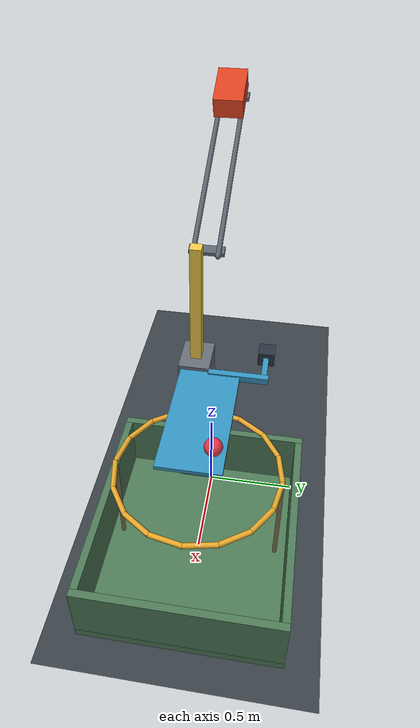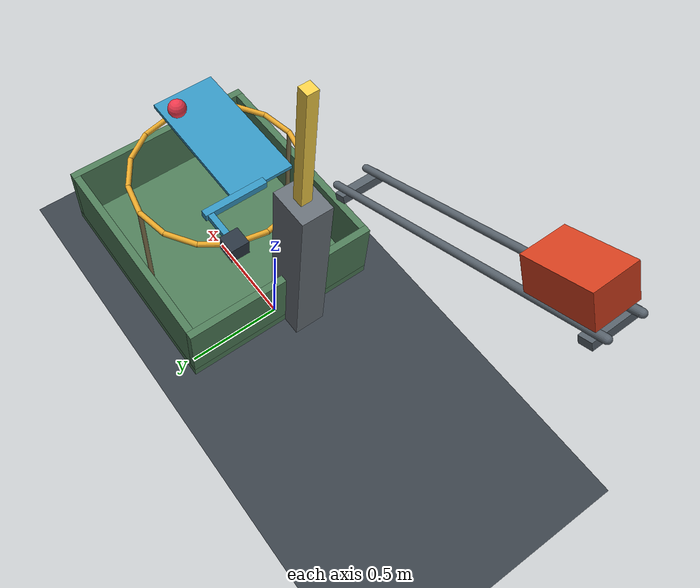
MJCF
<mujoco model="cart_domino_flap_ball">
  <compiler angle="radian"/>
  <option timestep="0.002" gravity="0 0 -9.81" integrator="implicitfast" cone="elliptic" iterations="100"/>

  <visual>
    <headlight ambient="0.4 0.4 0.4" diffuse="0.7 0.7 0.7" specular="0.2 0.2 0.2"/>
    <map znear="0.01"/>
  </visual>

  <worldbody>
    <light name="overhead" pos="-0.3 -1.5 4" dir="0.1 0.3 -1"/>
    <camera name="overview" pos="2.6 -4.2 2.8" xyaxes="0.85 0.53 0 -0.24 0.39 0.89"/>

    <geom name="floor" type="plane" size="5 5 0.1" rgba="0.22 0.25 0.28 1" friction="0.8 0.005 0.004" condim="6"/>

    <!-- The slide has a 1.2 m stroke. Contact occurs just before its end stop. -->
    <body name="rail" pos="-1.307 -0.10 1.989" quat="0.9762960071 0 0.2164396139 0">
      <geom name="rail_left" type="capsule" fromto="-0.15 -0.07 -0.095 1.10 -0.07 -0.095" size="0.015" friction="0.03 0.002 0.0001" rgba="0.35 0.39 0.43 1"/>
      <geom name="rail_right" type="capsule" fromto="-0.15 0.07 -0.095 1.10 0.07 -0.095" size="0.015" friction="0.03 0.002 0.0001" rgba="0.35 0.39 0.43 1"/>
      <geom name="rail_crosspiece_upper" type="box" pos="-0.10 0 -0.12" size="0.025 0.10 0.015" rgba="0.35 0.39 0.43 1"/>
      <geom name="rail_crosspiece_lower" type="box" pos="1.05 0 -0.12" size="0.025 0.10 0.015" rgba="0.35 0.39 0.43 1"/>
    </body>

    <body name="cart" pos="-1.307 -0.10 1.989" quat="0.9762960071 0 0.2164396139 0">
      <joint name="cart_slide" type="slide" axis="1 0 0" limited="true" range="0 1.2" damping="5" frictionloss="0.02" solreflimit="0.005 1"/>
      <geom name="cart_chassis" type="box" size="0.13 0.09 0.07" mass="1" friction="0.03 0.002 0.0001" solref="0.01 1" rgba="0.85 0.25 0.12 1"/>
    </body>

    <body name="domino_support" pos="-0.065 -0.10 0.485">
      <geom name="domino_support_column" type="box" size="0.11 0.085 0.485" friction="4 0.005 0.001" rgba="0.40 0.43 0.46 1"/>
    </body>

    <body name="domino" pos="-0.06 -0.10 1.32">
      <freejoint name="domino_free"/>
      <geom name="domino_block" type="box" size="0.03 0.03 0.35" mass="0.32" friction="4 0.005 0.001" solref="0.01 1" rgba="0.95 0.80 0.28 1"/>
    </body>

    <!-- The counterweight holds the flap at its upper stop until the domino lands. -->
    <body name="flap" pos="0.10 0 0.99">
      <joint name="flap_hinge" type="hinge" axis="0 1 0" limited="true" range="0 1.2217304764" damping="0.015" frictionloss="0.005" solreflimit="0.005 1"/>
      <geom name="flap_plate" type="box" pos="0.335 0 0" size="0.335 0.16 0.01" mass="0.06" friction="4 0.005 0.001" solref="0.008 1" rgba="0.20 0.58 0.75 1"/>
      <geom name="flap_crossbar" type="box" pos="0 0.15 0" size="0.018 0.16 0.018" mass="0.014" friction="4 0.005 0.001" rgba="0.20 0.58 0.75 1"/>
      <geom name="flap_counterweight_arm" type="box" pos="-0.10 0.285 0" size="0.10 0.015 0.015" mass="0.008" friction="4 0.005 0.001" rgba="0.20 0.58 0.75 1"/>
      <geom name="flap_counterweight" type="box" pos="-0.20 0.285 0" size="0.045 0.045 0.04" mass="0.25" friction="4 0.005 0.001" rgba="0.16 0.20 0.25 1"/>
    </body>

    <body name="ball" pos="0.65 0.10 1.045">
      <freejoint name="ball_free"/>
      <geom name="ball_sphere" type="sphere" size="0.045" mass="0.045" condim="6" friction="0.7 0.005 0.004" solref="0.01 1" rgba="0.92 0.22 0.30 1"/>
    </body>

    <!-- A capsule-built ring leaves clearance for the flap's downward sweep. -->
    <body name="ring" pos="0.50 0 0.66">
      <geom name="ring_segment_00" type="capsule" fromto="0.44 0 0 0.406507 0.168381 0" size="0.014" rgba="0.90 0.65 0.16 1"/>
      <geom name="ring_segment_01" type="capsule" fromto="0.406507 0.168381 0 0.311127 0.311127 0" size="0.014" rgba="0.90 0.65 0.16 1"/>
      <geom name="ring_segment_02" type="capsule" fromto="0.311127 0.311127 0 0.168381 0.406507 0" size="0.014" rgba="0.90 0.65 0.16 1"/>
      <geom name="ring_segment_03" type="capsule" fromto="0.168381 0.406507 0 0 0.44 0" size="0.014" rgba="0.90 0.65 0.16 1"/>
      <geom name="ring_segment_04" type="capsule" fromto="0 0.44 0 -0.168381 0.406507 0" size="0.014" rgba="0.90 0.65 0.16 1"/>
      <geom name="ring_segment_05" type="capsule" fromto="-0.168381 0.406507 0 -0.311127 0.311127 0" size="0.014" rgba="0.90 0.65 0.16 1"/>
      <geom name="ring_segment_06" type="capsule" fromto="-0.311127 0.311127 0 -0.406507 0.168381 0" size="0.014" rgba="0.90 0.65 0.16 1"/>
      <geom name="ring_segment_07" type="capsule" fromto="-0.406507 0.168381 0 -0.44 0 0" size="0.014" rgba="0.90 0.65 0.16 1"/>
      <geom name="ring_segment_08" type="capsule" fromto="-0.44 0 0 -0.406507 -0.168381 0" size="0.014" rgba="0.90 0.65 0.16 1"/>
      <geom name="ring_segment_09" type="capsule" fromto="-0.406507 -0.168381 0 -0.311127 -0.311127 0" size="0.014" rgba="0.90 0.65 0.16 1"/>
      <geom name="ring_segment_10" type="capsule" fromto="-0.311127 -0.311127 0 -0.168381 -0.406507 0" size="0.014" rgba="0.90 0.65 0.16 1"/>
      <geom name="ring_segment_11" type="capsule" fromto="-0.168381 -0.406507 0 0 -0.44 0" size="0.014" rgba="0.90 0.65 0.16 1"/>
      <geom name="ring_segment_12" type="capsule" fromto="0 -0.44 0 0.168381 -0.406507 0" size="0.014" rgba="0.90 0.65 0.16 1"/>
      <geom name="ring_segment_13" type="capsule" fromto="0.168381 -0.406507 0 0.311127 -0.311127 0" size="0.014" rgba="0.90 0.65 0.16 1"/>
      <geom name="ring_segment_14" type="capsule" fromto="0.311127 -0.311127 0 0.406507 -0.168381 0" size="0.014" rgba="0.90 0.65 0.16 1"/>
      <geom name="ring_segment_15" type="capsule" fromto="0.406507 -0.168381 0 0.44 0 0" size="0.014" rgba="0.90 0.65 0.16 1"/>
      <geom name="ring_support_left" type="capsule" fromto="0 -0.44 -0.61 0 -0.44 0" size="0.012" rgba="0.50 0.45 0.30 1"/>
      <geom name="ring_support_right" type="capsule" fromto="0 0.44 -0.61 0 0.44 0" size="0.012" rgba="0.50 0.45 0.30 1"/>
    </body>

    <body name="box" pos="0.525 0 0">
      <geom name="box_bottom" type="box" pos="0 0 0.025" size="0.60 0.54 0.025" condim="6" friction="0.8 0.005 0.004" solref="0.01 1" rgba="0.30 0.48 0.34 1"/>
      <geom name="box_wall_back" type="box" pos="-0.58 0 0.215" size="0.02 0.54 0.165" condim="6" friction="0.8 0.005 0.004" solref="0.01 1" rgba="0.30 0.48 0.34 1"/>
      <geom name="box_wall_front" type="box" pos="0.58 0 0.215" size="0.02 0.54 0.165" condim="6" friction="0.8 0.005 0.004" solref="0.01 1" rgba="0.30 0.48 0.34 1"/>
      <geom name="box_wall_left" type="box" pos="0 -0.52 0.215" size="0.56 0.02 0.165" condim="6" friction="0.8 0.005 0.004" solref="0.01 1" rgba="0.30 0.48 0.34 1"/>
      <geom name="box_wall_right" type="box" pos="0 0.52 0.215" size="0.56 0.02 0.165" condim="6" friction="0.8 0.005 0.004" solref="0.01 1" rgba="0.30 0.48 0.34 1"/>
    </body>
  </worldbody>

  <keyframe>
    <key name="start" qpos="0 -0.06 -0.10 1.32 1 0 0 0 0 0.65 0.10 1.045 1 0 0 0"/>
  </keyframe>
</mujoco>
